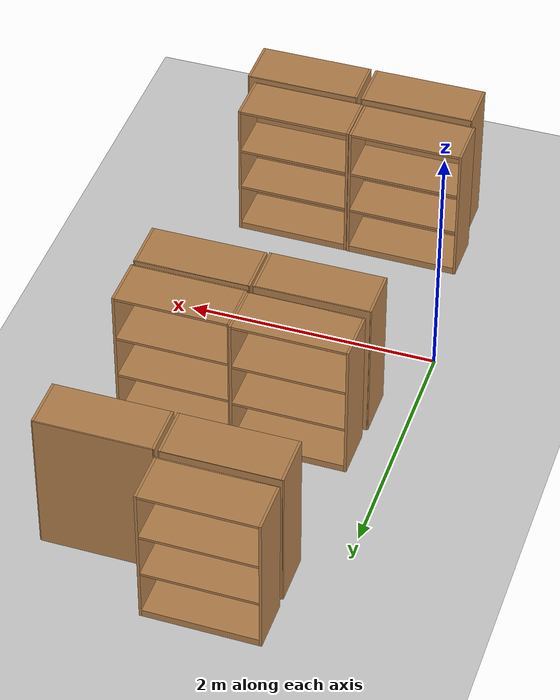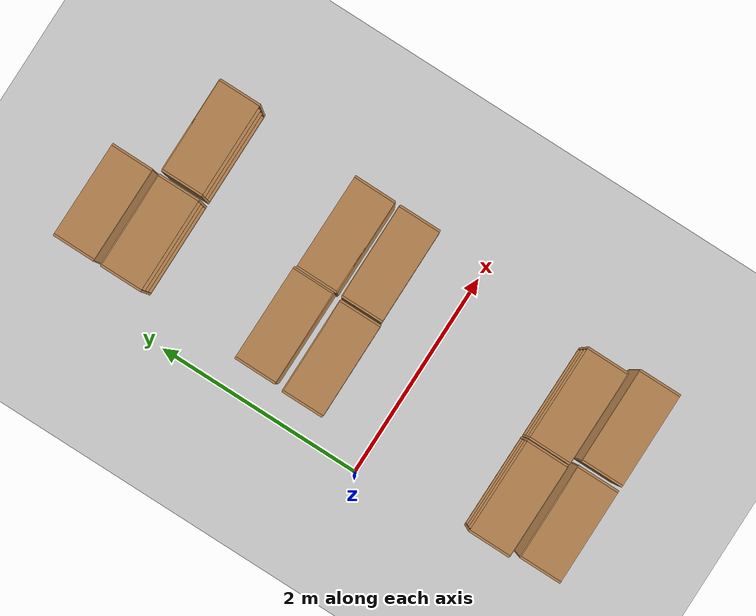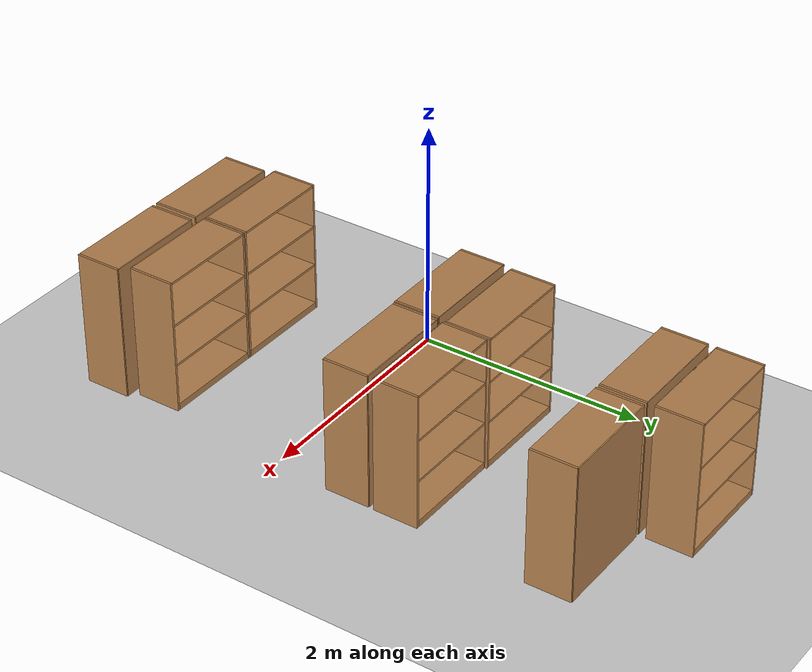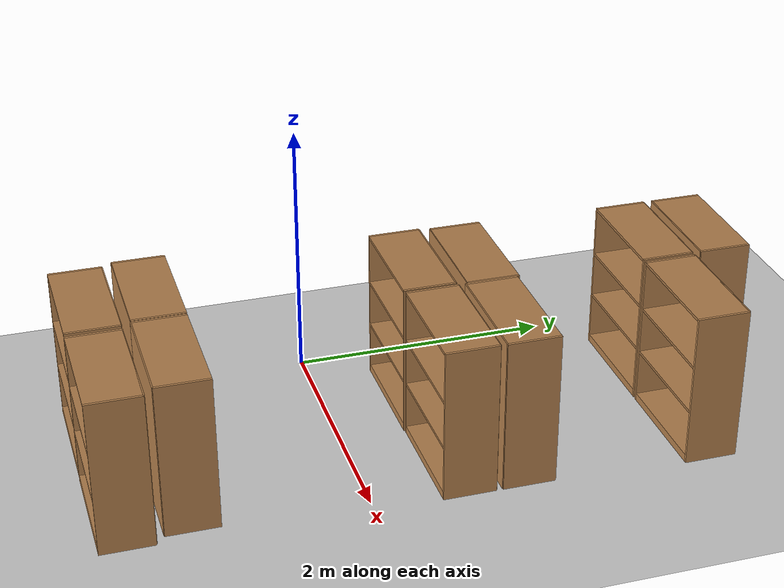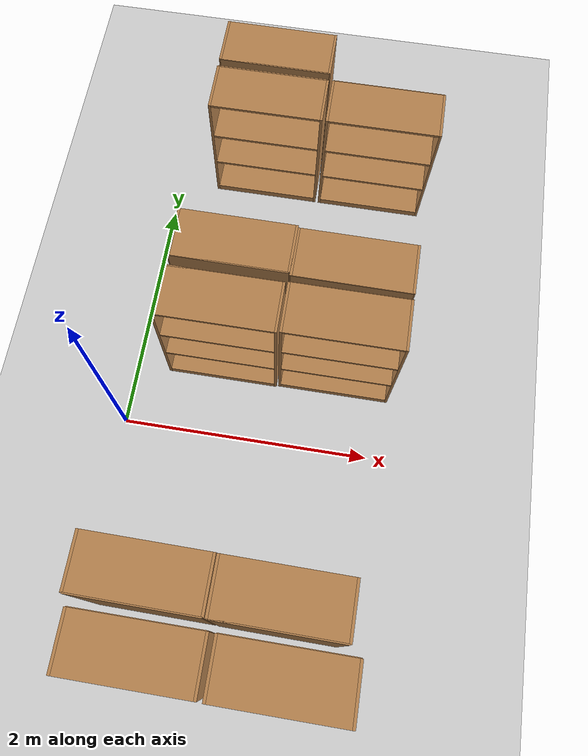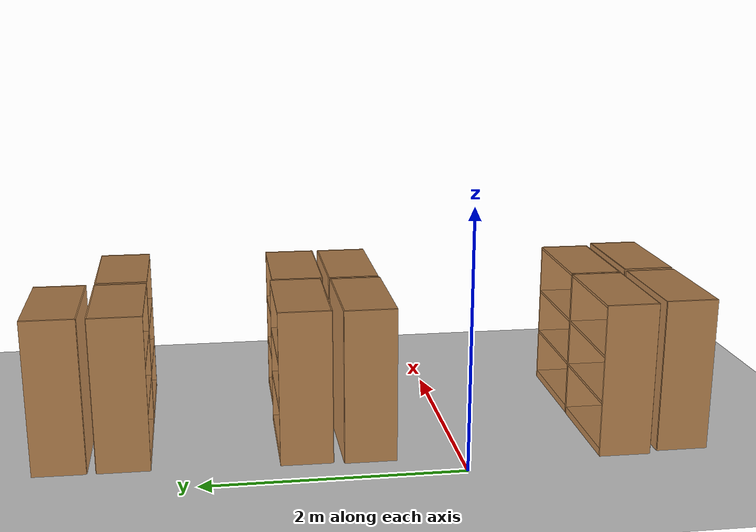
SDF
<sdf version="1.7">
 <world name="default">
  <model name="ground_plane">
   <static>1</static>
   <link name="link">
    <collision name="collision">
     <geometry><plane><normal>0 0 1</normal><size>100 100</size></plane></geometry>
     <surface>
      <contact><collide_bitmask>65535</collide_bitmask></contact>
      <friction><ode><mu>100</mu><mu2>50</mu2></ode></friction>
     </surface>
    </collision>
    <visual name="visual">
     <cast_shadows>0</cast_shadows>
     <geometry><plane><normal>0 0 1</normal><size>100 100</size></plane></geometry>
     <material>
      <script><uri>file://media/materials/scripts/gazebo.material</uri><name>Gazebo/Grey</name></script>
     </material>
    </visual>
   </link>
  </model>
  <model name="bookshelf_0">
   <static>1</static>
   <link name="link">
    <inertial><mass>1</mass></inertial>
    <collision name="back">
     <pose>0 0.005 0.6 0 -0 0</pose>
     <geometry><box><size>0.9 0.01 1.2</size></box></geometry>
    </collision>
    <visual name="visual1">
     <pose>0 0.005 0.6 0 -0 0</pose>
     <geometry><box><size>0.9 0.01 1.2</size></box></geometry>
     <material>
      <script><uri>file://media/materials/scripts/gazebo.material</uri><name>Gazebo/Wood</name></script>
     </material>
    </visual>
    <collision name="left_side">
     <pose>0.45 -0.195 0.6 0 -0 0</pose>
     <geometry><box><size>0.02 0.4 1.2</size></box></geometry>
    </collision>
    <visual name="visual2">
     <pose>0.45 -0.195 0.6 0 -0 0</pose>
     <geometry><box><size>0.02 0.4 1.2</size></box></geometry>
     <material>
      <script><uri>file://media/materials/scripts/gazebo.material</uri><name>Gazebo/Wood</name></script>
     </material>
    </visual>
    <collision name="right_side">
     <pose>-0.45 -0.195 0.6 0 -0 0</pose>
     <geometry><box><size>0.02 0.4 1.2</size></box></geometry>
    </collision>
    <visual name="visual3">
     <pose>-0.45 -0.195 0.6 0 -0 0</pose>
     <geometry><box><size>0.02 0.4 1.2</size></box></geometry>
     <material>
      <script><uri>file://media/materials/scripts/gazebo.material</uri><name>Gazebo/Wood</name></script>
     </material>
    </visual>
    <collision name="bottom">
     <pose>0 -0.195 0.03 0 -0 0</pose>
     <geometry><box><size>0.88 0.4 0.06</size></box></geometry>
    </collision>
    <visual name="visual4">
     <pose>0 -0.195 0.03 0 -0 0</pose>
     <geometry><box><size>0.88 0.4 0.06</size></box></geometry>
     <material>
      <script><uri>file://media/materials/scripts/gazebo.material</uri><name>Gazebo/Wood</name></script>
     </material>
    </visual>
    <collision name="top">
     <pose>0 -0.195 1.19 0 -0 0</pose>
     <geometry><box><size>0.88 0.4 0.02</size></box></geometry>
    </collision>
    <visual name="visual5">
     <pose>0 -0.195 1.19 0 -0 0</pose>
     <geometry><box><size>0.88 0.4 0.02</size></box></geometry>
     <material>
      <script><uri>file://media/materials/scripts/gazebo.material</uri><name>Gazebo/Wood</name></script>
     </material>
    </visual>
    <collision name="low_shelf">
     <pose>0 -0.195 0.43 0 -0 0</pose>
     <geometry><box><size>0.88 0.4 0.02</size></box></geometry>
    </collision>
    <visual name="visual6">
     <pose>0 -0.195 0.43 0 -0 0</pose>
     <geometry><box><size>0.88 0.4 0.02</size></box></geometry>
     <material>
      <script><uri>file://media/materials/scripts/gazebo.material</uri><name>Gazebo/Wood</name></script>
     </material>
    </visual>
    <collision name="high_shelf">
     <pose>0 -0.195 0.8 0 -0 0</pose>
     <geometry><box><size>0.88 0.4 0.02</size></box></geometry>
    </collision>
    <visual name="visual7">
     <pose>0 -0.195 0.8 0 -0 0</pose>
     <geometry><box><size>0.88 0.4 0.02</size></box></geometry>
     <material>
      <script><uri>file://media/materials/scripts/gazebo.material</uri><name>Gazebo/Wood</name></script>
     </material>
    </visual>
   </link>
   <pose>1.7387 2.73379 0 0 -0 0</pose>
  </model>
  <model name="bookshelf_1">
   <static>1</static>
   <link name="link">
    <inertial><mass>1</mass></inertial>
    <collision name="back">
     <pose>0 0.005 0.6 0 -0 0</pose>
     <geometry><box><size>0.9 0.01 1.2</size></box></geometry>
    </collision>
    <visual name="visual1">
     <pose>0 0.005 0.6 0 -0 0</pose>
     <geometry><box><size>0.9 0.01 1.2</size></box></geometry>
     <material>
      <script><uri>file://media/materials/scripts/gazebo.material</uri><name>Gazebo/Wood</name></script>
     </material>
    </visual>
    <collision name="left_side">
     <pose>0.45 -0.195 0.6 0 -0 0</pose>
     <geometry><box><size>0.02 0.4 1.2</size></box></geometry>
    </collision>
    <visual name="visual2">
     <pose>0.45 -0.195 0.6 0 -0 0</pose>
     <geometry><box><size>0.02 0.4 1.2</size></box></geometry>
     <material>
      <script><uri>file://media/materials/scripts/gazebo.material</uri><name>Gazebo/Wood</name></script>
     </material>
    </visual>
    <collision name="right_side">
     <pose>-0.45 -0.195 0.6 0 -0 0</pose>
     <geometry><box><size>0.02 0.4 1.2</size></box></geometry>
    </collision>
    <visual name="visual3">
     <pose>-0.45 -0.195 0.6 0 -0 0</pose>
     <geometry><box><size>0.02 0.4 1.2</size></box></geometry>
     <material>
      <script><uri>file://media/materials/scripts/gazebo.material</uri><name>Gazebo/Wood</name></script>
     </material>
    </visual>
    <collision name="bottom">
     <pose>0 -0.195 0.03 0 -0 0</pose>
     <geometry><box><size>0.88 0.4 0.06</size></box></geometry>
    </collision>
    <visual name="visual4">
     <pose>0 -0.195 0.03 0 -0 0</pose>
     <geometry><box><size>0.88 0.4 0.06</size></box></geometry>
     <material>
      <script><uri>file://media/materials/scripts/gazebo.material</uri><name>Gazebo/Wood</name></script>
     </material>
    </visual>
    <collision name="top">
     <pose>0 -0.195 1.19 0 -0 0</pose>
     <geometry><box><size>0.88 0.4 0.02</size></box></geometry>
    </collision>
    <visual name="visual5">
     <pose>0 -0.195 1.19 0 -0 0</pose>
     <geometry><box><size>0.88 0.4 0.02</size></box></geometry>
     <material>
      <script><uri>file://media/materials/scripts/gazebo.material</uri><name>Gazebo/Wood</name></script>
     </material>
    </visual>
    <collision name="low_shelf">
     <pose>0 -0.195 0.43 0 -0 0</pose>
     <geometry><box><size>0.88 0.4 0.02</size></box></geometry>
    </collision>
    <visual name="visual6">
     <pose>0 -0.195 0.43 0 -0 0</pose>
     <geometry><box><size>0.88 0.4 0.02</size></box></geometry>
     <material>
      <script><uri>file://media/materials/scripts/gazebo.material</uri><name>Gazebo/Wood</name></script>
     </material>
    </visual>
    <collision name="high_shelf">
     <pose>0 -0.195 0.8 0 -0 0</pose>
     <geometry><box><size>0.88 0.4 0.02</size></box></geometry>
    </collision>
    <visual name="visual7">
     <pose>0 -0.195 0.8 0 -0 0</pose>
     <geometry><box><size>0.88 0.4 0.02</size></box></geometry>
     <material>
      <script><uri>file://media/materials/scripts/gazebo.material</uri><name>Gazebo/Wood</name></script>
     </material>
    </visual>
   </link>
   <pose>0.793169 2.73431 0 0 -0 0</pose>
  </model>
  <model name="bookshelf_2_clone">
   <static>1</static>
   <link name="link">
    <inertial><mass>1</mass></inertial>
    <collision name="back">
     <pose>0 0.005 0.6 0 -0 0</pose>
     <geometry><box><size>0.9 0.01 1.2</size></box></geometry>
    </collision>
    <visual name="visual1">
     <pose>0 0.005 0.6 0 -0 0</pose>
     <geometry><box><size>0.9 0.01 1.2</size></box></geometry>
     <material>
      <script><uri>file://media/materials/scripts/gazebo.material</uri><name>Gazebo/Wood</name></script>
     </material>
    </visual>
    <collision name="left_side">
     <pose>0.45 -0.195 0.6 0 -0 0</pose>
     <geometry><box><size>0.02 0.4 1.2</size></box></geometry>
    </collision>
    <visual name="visual2">
     <pose>0.45 -0.195 0.6 0 -0 0</pose>
     <geometry><box><size>0.02 0.4 1.2</size></box></geometry>
     <material>
      <script><uri>file://media/materials/scripts/gazebo.material</uri><name>Gazebo/Wood</name></script>
     </material>
    </visual>
    <collision name="right_side">
     <pose>-0.45 -0.195 0.6 0 -0 0</pose>
     <geometry><box><size>0.02 0.4 1.2</size></box></geometry>
    </collision>
    <visual name="visual3">
     <pose>-0.45 -0.195 0.6 0 -0 0</pose>
     <geometry><box><size>0.02 0.4 1.2</size></box></geometry>
     <material>
      <script><uri>file://media/materials/scripts/gazebo.material</uri><name>Gazebo/Wood</name></script>
     </material>
    </visual>
    <collision name="bottom">
     <pose>0 -0.195 0.03 0 -0 0</pose>
     <geometry><box><size>0.88 0.4 0.06</size></box></geometry>
    </collision>
    <visual name="visual4">
     <pose>0 -0.195 0.03 0 -0 0</pose>
     <geometry><box><size>0.88 0.4 0.06</size></box></geometry>
     <material>
      <script><uri>file://media/materials/scripts/gazebo.material</uri><name>Gazebo/Wood</name></script>
     </material>
    </visual>
    <collision name="top">
     <pose>0 -0.195 1.19 0 -0 0</pose>
     <geometry><box><size>0.88 0.4 0.02</size></box></geometry>
    </collision>
    <visual name="visual5">
     <pose>0 -0.195 1.19 0 -0 0</pose>
     <geometry><box><size>0.88 0.4 0.02</size></box></geometry>
     <material>
      <script><uri>file://media/materials/scripts/gazebo.material</uri><name>Gazebo/Wood</name></script>
     </material>
    </visual>
    <collision name="low_shelf">
     <pose>0 -0.195 0.43 0 -0 0</pose>
     <geometry><box><size>0.88 0.4 0.02</size></box></geometry>
    </collision>
    <visual name="visual6">
     <pose>0 -0.195 0.43 0 -0 0</pose>
     <geometry><box><size>0.88 0.4 0.02</size></box></geometry>
     <material>
      <script><uri>file://media/materials/scripts/gazebo.material</uri><name>Gazebo/Wood</name></script>
     </material>
    </visual>
    <collision name="high_shelf">
     <pose>0 -0.195 0.8 0 -0 0</pose>
     <geometry><box><size>0.88 0.4 0.02</size></box></geometry>
    </collision>
    <visual name="visual7">
     <pose>0 -0.195 0.8 0 -0 0</pose>
     <geometry><box><size>0.88 0.4 0.02</size></box></geometry>
     <material>
      <script><uri>file://media/materials/scripts/gazebo.material</uri><name>Gazebo/Wood</name></script>
     </material>
    </visual>
   </link>
   <pose>1.6637 0.95756 0 0 -0 3.13622</pose>
  </model>
  <model name="bookshelf_2_clone_0">
   <static>1</static>
   <link name="link">
    <inertial><mass>1</mass></inertial>
    <collision name="back">
     <pose>0 0.005 0.6 0 -0 0</pose>
     <geometry><box><size>0.9 0.01 1.2</size></box></geometry>
    </collision>
    <visual name="visual1">
     <pose>0 0.005 0.6 0 -0 0</pose>
     <geometry><box><size>0.9 0.01 1.2</size></box></geometry>
     <material>
      <script><uri>file://media/materials/scripts/gazebo.material</uri><name>Gazebo/Wood</name></script>
     </material>
    </visual>
    <collision name="left_side">
     <pose>0.45 -0.195 0.6 0 -0 0</pose>
     <geometry><box><size>0.02 0.4 1.2</size></box></geometry>
    </collision>
    <visual name="visual2">
     <pose>0.45 -0.195 0.6 0 -0 0</pose>
     <geometry><box><size>0.02 0.4 1.2</size></box></geometry>
     <material>
      <script><uri>file://media/materials/scripts/gazebo.material</uri><name>Gazebo/Wood</name></script>
     </material>
    </visual>
    <collision name="right_side">
     <pose>-0.45 -0.195 0.6 0 -0 0</pose>
     <geometry><box><size>0.02 0.4 1.2</size></box></geometry>
    </collision>
    <visual name="visual3">
     <pose>-0.45 -0.195 0.6 0 -0 0</pose>
     <geometry><box><size>0.02 0.4 1.2</size></box></geometry>
     <material>
      <script><uri>file://media/materials/scripts/gazebo.material</uri><name>Gazebo/Wood</name></script>
     </material>
    </visual>
    <collision name="bottom">
     <pose>0 -0.195 0.03 0 -0 0</pose>
     <geometry><box><size>0.88 0.4 0.06</size></box></geometry>
    </collision>
    <visual name="visual4">
     <pose>0 -0.195 0.03 0 -0 0</pose>
     <geometry><box><size>0.88 0.4 0.06</size></box></geometry>
     <material>
      <script><uri>file://media/materials/scripts/gazebo.material</uri><name>Gazebo/Wood</name></script>
     </material>
    </visual>
    <collision name="top">
     <pose>0 -0.195 1.19 0 -0 0</pose>
     <geometry><box><size>0.88 0.4 0.02</size></box></geometry>
    </collision>
    <visual name="visual5">
     <pose>0 -0.195 1.19 0 -0 0</pose>
     <geometry><box><size>0.88 0.4 0.02</size></box></geometry>
     <material>
      <script><uri>file://media/materials/scripts/gazebo.material</uri><name>Gazebo/Wood</name></script>
     </material>
    </visual>
    <collision name="low_shelf">
     <pose>0 -0.195 0.43 0 -0 0</pose>
     <geometry><box><size>0.88 0.4 0.02</size></box></geometry>
    </collision>
    <visual name="visual6">
     <pose>0 -0.195 0.43 0 -0 0</pose>
     <geometry><box><size>0.88 0.4 0.02</size></box></geometry>
     <material>
      <script><uri>file://media/materials/scripts/gazebo.material</uri><name>Gazebo/Wood</name></script>
     </material>
    </visual>
    <collision name="high_shelf">
     <pose>0 -0.195 0.8 0 -0 0</pose>
     <geometry><box><size>0.88 0.4 0.02</size></box></geometry>
    </collision>
    <visual name="visual7">
     <pose>0 -0.195 0.8 0 -0 0</pose>
     <geometry><box><size>0.88 0.4 0.02</size></box></geometry>
     <material>
      <script><uri>file://media/materials/scripts/gazebo.material</uri><name>Gazebo/Wood</name></script>
     </material>
    </visual>
   </link>
   <pose>0.747513 0.98044 0 0 -0 3.13622</pose>
  </model>
  <model name="bookshelf_clone_clone">
   <static>1</static>
   <link name="link">
    <inertial><mass>1</mass></inertial>
    <collision name="back">
     <pose>0 0.005 0.6 0 -0 0</pose>
     <geometry><box><size>0.9 0.01 1.2</size></box></geometry>
    </collision>
    <visual name="visual1">
     <pose>0 0.005 0.6 0 -0 0</pose>
     <geometry><box><size>0.9 0.01 1.2</size></box></geometry>
     <material>
      <script><uri>file://media/materials/scripts/gazebo.material</uri><name>Gazebo/Wood</name></script>
     </material>
    </visual>
    <collision name="left_side">
     <pose>0.45 -0.195 0.6 0 -0 0</pose>
     <geometry><box><size>0.02 0.4 1.2</size></box></geometry>
    </collision>
    <visual name="visual2">
     <pose>0.45 -0.195 0.6 0 -0 0</pose>
     <geometry><box><size>0.02 0.4 1.2</size></box></geometry>
     <material>
      <script><uri>file://media/materials/scripts/gazebo.material</uri><name>Gazebo/Wood</name></script>
     </material>
    </visual>
    <collision name="right_side">
     <pose>-0.45 -0.195 0.6 0 -0 0</pose>
     <geometry><box><size>0.02 0.4 1.2</size></box></geometry>
    </collision>
    <visual name="visual3">
     <pose>-0.45 -0.195 0.6 0 -0 0</pose>
     <geometry><box><size>0.02 0.4 1.2</size></box></geometry>
     <material>
      <script><uri>file://media/materials/scripts/gazebo.material</uri><name>Gazebo/Wood</name></script>
     </material>
    </visual>
    <collision name="bottom">
     <pose>0 -0.195 0.03 0 -0 0</pose>
     <geometry><box><size>0.88 0.4 0.06</size></box></geometry>
    </collision>
    <visual name="visual4">
     <pose>0 -0.195 0.03 0 -0 0</pose>
     <geometry><box><size>0.88 0.4 0.06</size></box></geometry>
     <material>
      <script><uri>file://media/materials/scripts/gazebo.material</uri><name>Gazebo/Wood</name></script>
     </material>
    </visual>
    <collision name="top">
     <pose>0 -0.195 1.19 0 -0 0</pose>
     <geometry><box><size>0.88 0.4 0.02</size></box></geometry>
    </collision>
    <visual name="visual5">
     <pose>0 -0.195 1.19 0 -0 0</pose>
     <geometry><box><size>0.88 0.4 0.02</size></box></geometry>
     <material>
      <script><uri>file://media/materials/scripts/gazebo.material</uri><name>Gazebo/Wood</name></script>
     </material>
    </visual>
    <collision name="low_shelf">
     <pose>0 -0.195 0.43 0 -0 0</pose>
     <geometry><box><size>0.88 0.4 0.02</size></box></geometry>
    </collision>
    <visual name="visual6">
     <pose>0 -0.195 0.43 0 -0 0</pose>
     <geometry><box><size>0.88 0.4 0.02</size></box></geometry>
     <material>
      <script><uri>file://media/materials/scripts/gazebo.material</uri><name>Gazebo/Wood</name></script>
     </material>
    </visual>
    <collision name="high_shelf">
     <pose>0 -0.195 0.8 0 -0 0</pose>
     <geometry><box><size>0.88 0.4 0.02</size></box></geometry>
    </collision>
    <visual name="visual7">
     <pose>0 -0.195 0.8 0 -0 0</pose>
     <geometry><box><size>0.88 0.4 0.02</size></box></geometry>
     <material>
      <script><uri>file://media/materials/scripts/gazebo.material</uri><name>Gazebo/Wood</name></script>
     </material>
    </visual>
   </link>
   <pose>1.6608 0.896396 0 0 -0 0</pose>
  </model>
  <model name="bookshelf_clone_clone_clone">
   <static>1</static>
   <link name="link">
    <inertial><mass>1</mass></inertial>
    <collision name="back">
     <pose>0 0.005 0.6 0 -0 0</pose>
     <geometry><box><size>0.9 0.01 1.2</size></box></geometry>
    </collision>
    <visual name="visual1">
     <pose>0 0.005 0.6 0 -0 0</pose>
     <geometry><box><size>0.9 0.01 1.2</size></box></geometry>
     <material>
      <script><uri>file://media/materials/scripts/gazebo.material</uri><name>Gazebo/Wood</name></script>
     </material>
    </visual>
    <collision name="left_side">
     <pose>0.45 -0.195 0.6 0 -0 0</pose>
     <geometry><box><size>0.02 0.4 1.2</size></box></geometry>
    </collision>
    <visual name="visual2">
     <pose>0.45 -0.195 0.6 0 -0 0</pose>
     <geometry><box><size>0.02 0.4 1.2</size></box></geometry>
     <material>
      <script><uri>file://media/materials/scripts/gazebo.material</uri><name>Gazebo/Wood</name></script>
     </material>
    </visual>
    <collision name="right_side">
     <pose>-0.45 -0.195 0.6 0 -0 0</pose>
     <geometry><box><size>0.02 0.4 1.2</size></box></geometry>
    </collision>
    <visual name="visual3">
     <pose>-0.45 -0.195 0.6 0 -0 0</pose>
     <geometry><box><size>0.02 0.4 1.2</size></box></geometry>
     <material>
      <script><uri>file://media/materials/scripts/gazebo.material</uri><name>Gazebo/Wood</name></script>
     </material>
    </visual>
    <collision name="bottom">
     <pose>0 -0.195 0.03 0 -0 0</pose>
     <geometry><box><size>0.88 0.4 0.06</size></box></geometry>
    </collision>
    <visual name="visual4">
     <pose>0 -0.195 0.03 0 -0 0</pose>
     <geometry><box><size>0.88 0.4 0.06</size></box></geometry>
     <material>
      <script><uri>file://media/materials/scripts/gazebo.material</uri><name>Gazebo/Wood</name></script>
     </material>
    </visual>
    <collision name="top">
     <pose>0 -0.195 1.19 0 -0 0</pose>
     <geometry><box><size>0.88 0.4 0.02</size></box></geometry>
    </collision>
    <visual name="visual5">
     <pose>0 -0.195 1.19 0 -0 0</pose>
     <geometry><box><size>0.88 0.4 0.02</size></box></geometry>
     <material>
      <script><uri>file://media/materials/scripts/gazebo.material</uri><name>Gazebo/Wood</name></script>
     </material>
    </visual>
    <collision name="low_shelf">
     <pose>0 -0.195 0.43 0 -0 0</pose>
     <geometry><box><size>0.88 0.4 0.02</size></box></geometry>
    </collision>
    <visual name="visual6">
     <pose>0 -0.195 0.43 0 -0 0</pose>
     <geometry><box><size>0.88 0.4 0.02</size></box></geometry>
     <material>
      <script><uri>file://media/materials/scripts/gazebo.material</uri><name>Gazebo/Wood</name></script>
     </material>
    </visual>
    <collision name="high_shelf">
     <pose>0 -0.195 0.8 0 -0 0</pose>
     <geometry><box><size>0.88 0.4 0.02</size></box></geometry>
    </collision>
    <visual name="visual7">
     <pose>0 -0.195 0.8 0 -0 0</pose>
     <geometry><box><size>0.88 0.4 0.02</size></box></geometry>
     <material>
      <script><uri>file://media/materials/scripts/gazebo.material</uri><name>Gazebo/Wood</name></script>
     </material>
    </visual>
   </link>
   <pose>0.72663 0.888413 0 0 -0 0</pose>
  </model>
  <model name="bookshelf_2_clone_0_clone_1">
   <static>1</static>
   <link name="link">
    <inertial><mass>1</mass></inertial>
    <collision name="back">
     <pose>0 0.005 0.6 0 -0 0</pose>
     <geometry><box><size>0.9 0.01 1.2</size></box></geometry>
    </collision>
    <visual name="visual1">
     <pose>0 0.005 0.6 0 -0 0</pose>
     <geometry><box><size>0.9 0.01 1.2</size></box></geometry>
     <material>
      <script><uri>file://media/materials/scripts/gazebo.material</uri><name>Gazebo/Wood</name></script>
     </material>
    </visual>
    <collision name="left_side">
     <pose>0.45 -0.195 0.6 0 -0 0</pose>
     <geometry><box><size>0.02 0.4 1.2</size></box></geometry>
    </collision>
    <visual name="visual2">
     <pose>0.45 -0.195 0.6 0 -0 0</pose>
     <geometry><box><size>0.02 0.4 1.2</size></box></geometry>
     <material>
      <script><uri>file://media/materials/scripts/gazebo.material</uri><name>Gazebo/Wood</name></script>
     </material>
    </visual>
    <collision name="right_side">
     <pose>-0.45 -0.195 0.6 0 -0 0</pose>
     <geometry><box><size>0.02 0.4 1.2</size></box></geometry>
    </collision>
    <visual name="visual3">
     <pose>-0.45 -0.195 0.6 0 -0 0</pose>
     <geometry><box><size>0.02 0.4 1.2</size></box></geometry>
     <material>
      <script><uri>file://media/materials/scripts/gazebo.material</uri><name>Gazebo/Wood</name></script>
     </material>
    </visual>
    <collision name="bottom">
     <pose>0 -0.195 0.03 0 -0 0</pose>
     <geometry><box><size>0.88 0.4 0.06</size></box></geometry>
    </collision>
    <visual name="visual4">
     <pose>0 -0.195 0.03 0 -0 0</pose>
     <geometry><box><size>0.88 0.4 0.06</size></box></geometry>
     <material>
      <script><uri>file://media/materials/scripts/gazebo.material</uri><name>Gazebo/Wood</name></script>
     </material>
    </visual>
    <collision name="top">
     <pose>0 -0.195 1.19 0 -0 0</pose>
     <geometry><box><size>0.88 0.4 0.02</size></box></geometry>
    </collision>
    <visual name="visual5">
     <pose>0 -0.195 1.19 0 -0 0</pose>
     <geometry><box><size>0.88 0.4 0.02</size></box></geometry>
     <material>
      <script><uri>file://media/materials/scripts/gazebo.material</uri><name>Gazebo/Wood</name></script>
     </material>
    </visual>
    <collision name="low_shelf">
     <pose>0 -0.195 0.43 0 -0 0</pose>
     <geometry><box><size>0.88 0.4 0.02</size></box></geometry>
    </collision>
    <visual name="visual6">
     <pose>0 -0.195 0.43 0 -0 0</pose>
     <geometry><box><size>0.88 0.4 0.02</size></box></geometry>
     <material>
      <script><uri>file://media/materials/scripts/gazebo.material</uri><name>Gazebo/Wood</name></script>
     </material>
    </visual>
    <collision name="high_shelf">
     <pose>0 -0.195 0.8 0 -0 0</pose>
     <geometry><box><size>0.88 0.4 0.02</size></box></geometry>
    </collision>
    <visual name="visual7">
     <pose>0 -0.195 0.8 0 -0 0</pose>
     <geometry><box><size>0.88 0.4 0.02</size></box></geometry>
     <material>
      <script><uri>file://media/materials/scripts/gazebo.material</uri><name>Gazebo/Wood</name></script>
     </material>
    </visual>
   </link>
   <pose>0.795432 2.81359 0 0 -0 3.13622</pose>
  </model>
  <model name="bookshelf_2_clone_2">
   <static>1</static>
   <link name="link">
    <inertial><mass>1</mass></inertial>
    <collision name="back">
     <pose>0 0.005 0.6 0 -0 0</pose>
     <geometry><box><size>0.9 0.01 1.2</size></box></geometry>
    </collision>
    <visual name="visual1">
     <pose>0 0.005 0.6 0 -0 0</pose>
     <geometry><box><size>0.9 0.01 1.2</size></box></geometry>
     <material>
      <script><uri>file://media/materials/scripts/gazebo.material</uri><name>Gazebo/Wood</name></script>
     </material>
    </visual>
    <collision name="left_side">
     <pose>0.45 -0.195 0.6 0 -0 0</pose>
     <geometry><box><size>0.02 0.4 1.2</size></box></geometry>
    </collision>
    <visual name="visual2">
     <pose>0.45 -0.195 0.6 0 -0 0</pose>
     <geometry><box><size>0.02 0.4 1.2</size></box></geometry>
     <material>
      <script><uri>file://media/materials/scripts/gazebo.material</uri><name>Gazebo/Wood</name></script>
     </material>
    </visual>
    <collision name="right_side">
     <pose>-0.45 -0.195 0.6 0 -0 0</pose>
     <geometry><box><size>0.02 0.4 1.2</size></box></geometry>
    </collision>
    <visual name="visual3">
     <pose>-0.45 -0.195 0.6 0 -0 0</pose>
     <geometry><box><size>0.02 0.4 1.2</size></box></geometry>
     <material>
      <script><uri>file://media/materials/scripts/gazebo.material</uri><name>Gazebo/Wood</name></script>
     </material>
    </visual>
    <collision name="bottom">
     <pose>0 -0.195 0.03 0 -0 0</pose>
     <geometry><box><size>0.88 0.4 0.06</size></box></geometry>
    </collision>
    <visual name="visual4">
     <pose>0 -0.195 0.03 0 -0 0</pose>
     <geometry><box><size>0.88 0.4 0.06</size></box></geometry>
     <material>
      <script><uri>file://media/materials/scripts/gazebo.material</uri><name>Gazebo/Wood</name></script>
     </material>
    </visual>
    <collision name="top">
     <pose>0 -0.195 1.19 0 -0 0</pose>
     <geometry><box><size>0.88 0.4 0.02</size></box></geometry>
    </collision>
    <visual name="visual5">
     <pose>0 -0.195 1.19 0 -0 0</pose>
     <geometry><box><size>0.88 0.4 0.02</size></box></geometry>
     <material>
      <script><uri>file://media/materials/scripts/gazebo.material</uri><name>Gazebo/Wood</name></script>
     </material>
    </visual>
    <collision name="low_shelf">
     <pose>0 -0.195 0.43 0 -0 0</pose>
     <geometry><box><size>0.88 0.4 0.02</size></box></geometry>
    </collision>
    <visual name="visual6">
     <pose>0 -0.195 0.43 0 -0 0</pose>
     <geometry><box><size>0.88 0.4 0.02</size></box></geometry>
     <material>
      <script><uri>file://media/materials/scripts/gazebo.material</uri><name>Gazebo/Wood</name></script>
     </material>
    </visual>
    <collision name="high_shelf">
     <pose>0 -0.195 0.8 0 -0 0</pose>
     <geometry><box><size>0.88 0.4 0.02</size></box></geometry>
    </collision>
    <visual name="visual7">
     <pose>0 -0.195 0.8 0 -0 0</pose>
     <geometry><box><size>0.88 0.4 0.02</size></box></geometry>
     <material>
      <script><uri>file://media/materials/scripts/gazebo.material</uri><name>Gazebo/Wood</name></script>
     </material>
    </visual>
   </link>
   <pose>1.50781 -1.45641 0 0 -0 3.13622</pose>
  </model>
  <model name="bookshelf_2_clone_3">
   <static>1</static>
   <link name="link">
    <inertial><mass>1</mass></inertial>
    <collision name="back">
     <pose>0 0.005 0.6 0 -0 0</pose>
     <geometry><box><size>0.9 0.01 1.2</size></box></geometry>
    </collision>
    <visual name="visual1">
     <pose>0 0.005 0.6 0 -0 0</pose>
     <geometry><box><size>0.9 0.01 1.2</size></box></geometry>
     <material>
      <script><uri>file://media/materials/scripts/gazebo.material</uri><name>Gazebo/Wood</name></script>
     </material>
    </visual>
    <collision name="left_side">
     <pose>0.45 -0.195 0.6 0 -0 0</pose>
     <geometry><box><size>0.02 0.4 1.2</size></box></geometry>
    </collision>
    <visual name="visual2">
     <pose>0.45 -0.195 0.6 0 -0 0</pose>
     <geometry><box><size>0.02 0.4 1.2</size></box></geometry>
     <material>
      <script><uri>file://media/materials/scripts/gazebo.material</uri><name>Gazebo/Wood</name></script>
     </material>
    </visual>
    <collision name="right_side">
     <pose>-0.45 -0.195 0.6 0 -0 0</pose>
     <geometry><box><size>0.02 0.4 1.2</size></box></geometry>
    </collision>
    <visual name="visual3">
     <pose>-0.45 -0.195 0.6 0 -0 0</pose>
     <geometry><box><size>0.02 0.4 1.2</size></box></geometry>
     <material>
      <script><uri>file://media/materials/scripts/gazebo.material</uri><name>Gazebo/Wood</name></script>
     </material>
    </visual>
    <collision name="bottom">
     <pose>0 -0.195 0.03 0 -0 0</pose>
     <geometry><box><size>0.88 0.4 0.06</size></box></geometry>
    </collision>
    <visual name="visual4">
     <pose>0 -0.195 0.03 0 -0 0</pose>
     <geometry><box><size>0.88 0.4 0.06</size></box></geometry>
     <material>
      <script><uri>file://media/materials/scripts/gazebo.material</uri><name>Gazebo/Wood</name></script>
     </material>
    </visual>
    <collision name="top">
     <pose>0 -0.195 1.19 0 -0 0</pose>
     <geometry><box><size>0.88 0.4 0.02</size></box></geometry>
    </collision>
    <visual name="visual5">
     <pose>0 -0.195 1.19 0 -0 0</pose>
     <geometry><box><size>0.88 0.4 0.02</size></box></geometry>
     <material>
      <script><uri>file://media/materials/scripts/gazebo.material</uri><name>Gazebo/Wood</name></script>
     </material>
    </visual>
    <collision name="low_shelf">
     <pose>0 -0.195 0.43 0 -0 0</pose>
     <geometry><box><size>0.88 0.4 0.02</size></box></geometry>
    </collision>
    <visual name="visual6">
     <pose>0 -0.195 0.43 0 -0 0</pose>
     <geometry><box><size>0.88 0.4 0.02</size></box></geometry>
     <material>
      <script><uri>file://media/materials/scripts/gazebo.material</uri><name>Gazebo/Wood</name></script>
     </material>
    </visual>
    <collision name="high_shelf">
     <pose>0 -0.195 0.8 0 -0 0</pose>
     <geometry><box><size>0.88 0.4 0.02</size></box></geometry>
    </collision>
    <visual name="visual7">
     <pose>0 -0.195 0.8 0 -0 0</pose>
     <geometry><box><size>0.88 0.4 0.02</size></box></geometry>
     <material>
      <script><uri>file://media/materials/scripts/gazebo.material</uri><name>Gazebo/Wood</name></script>
     </material>
    </visual>
   </link>
   <pose>0.583819 -1.44906 0 0 -0 3.13622</pose>
  </model>
  <model name="bookshelf_clone_clone_clone_0">
   <static>1</static>
   <link name="link">
    <inertial><mass>1</mass></inertial>
    <collision name="back">
     <pose>0 0.005 0.6 0 -0 0</pose>
     <geometry><box><size>0.9 0.01 1.2</size></box></geometry>
    </collision>
    <visual name="visual1">
     <pose>0 0.005 0.6 0 -0 0</pose>
     <geometry><box><size>0.9 0.01 1.2</size></box></geometry>
     <material>
      <script><uri>file://media/materials/scripts/gazebo.material</uri><name>Gazebo/Wood</name></script>
     </material>
    </visual>
    <collision name="left_side">
     <pose>0.45 -0.195 0.6 0 -0 0</pose>
     <geometry><box><size>0.02 0.4 1.2</size></box></geometry>
    </collision>
    <visual name="visual2">
     <pose>0.45 -0.195 0.6 0 -0 0</pose>
     <geometry><box><size>0.02 0.4 1.2</size></box></geometry>
     <material>
      <script><uri>file://media/materials/scripts/gazebo.material</uri><name>Gazebo/Wood</name></script>
     </material>
    </visual>
    <collision name="right_side">
     <pose>-0.45 -0.195 0.6 0 -0 0</pose>
     <geometry><box><size>0.02 0.4 1.2</size></box></geometry>
    </collision>
    <visual name="visual3">
     <pose>-0.45 -0.195 0.6 0 -0 0</pose>
     <geometry><box><size>0.02 0.4 1.2</size></box></geometry>
     <material>
      <script><uri>file://media/materials/scripts/gazebo.material</uri><name>Gazebo/Wood</name></script>
     </material>
    </visual>
    <collision name="bottom">
     <pose>0 -0.195 0.03 0 -0 0</pose>
     <geometry><box><size>0.88 0.4 0.06</size></box></geometry>
    </collision>
    <visual name="visual4">
     <pose>0 -0.195 0.03 0 -0 0</pose>
     <geometry><box><size>0.88 0.4 0.06</size></box></geometry>
     <material>
      <script><uri>file://media/materials/scripts/gazebo.material</uri><name>Gazebo/Wood</name></script>
     </material>
    </visual>
    <collision name="top">
     <pose>0 -0.195 1.19 0 -0 0</pose>
     <geometry><box><size>0.88 0.4 0.02</size></box></geometry>
    </collision>
    <visual name="visual5">
     <pose>0 -0.195 1.19 0 -0 0</pose>
     <geometry><box><size>0.88 0.4 0.02</size></box></geometry>
     <material>
      <script><uri>file://media/materials/scripts/gazebo.material</uri><name>Gazebo/Wood</name></script>
     </material>
    </visual>
    <collision name="low_shelf">
     <pose>0 -0.195 0.43 0 -0 0</pose>
     <geometry><box><size>0.88 0.4 0.02</size></box></geometry>
    </collision>
    <visual name="visual6">
     <pose>0 -0.195 0.43 0 -0 0</pose>
     <geometry><box><size>0.88 0.4 0.02</size></box></geometry>
     <material>
      <script><uri>file://media/materials/scripts/gazebo.material</uri><name>Gazebo/Wood</name></script>
     </material>
    </visual>
    <collision name="high_shelf">
     <pose>0 -0.195 0.8 0 -0 0</pose>
     <geometry><box><size>0.88 0.4 0.02</size></box></geometry>
    </collision>
    <visual name="visual7">
     <pose>0 -0.195 0.8 0 -0 0</pose>
     <geometry><box><size>0.88 0.4 0.02</size></box></geometry>
     <material>
      <script><uri>file://media/materials/scripts/gazebo.material</uri><name>Gazebo/Wood</name></script>
     </material>
    </visual>
   </link>
   <pose>1.58569 -1.53588 0 0 -0 0</pose>
  </model>
  <model name="bookshelf_clone_clone_clone_1">
   <static>1</static>
   <link name="link">
    <inertial><mass>1</mass></inertial>
    <collision name="back">
     <pose>0 0.005 0.6 0 -0 0</pose>
     <geometry><box><size>0.9 0.01 1.2</size></box></geometry>
    </collision>
    <visual name="visual1">
     <pose>0 0.005 0.6 0 -0 0</pose>
     <geometry><box><size>0.9 0.01 1.2</size></box></geometry>
     <material>
      <script><uri>file://media/materials/scripts/gazebo.material</uri><name>Gazebo/Wood</name></script>
     </material>
    </visual>
    <collision name="left_side">
     <pose>0.45 -0.195 0.6 0 -0 0</pose>
     <geometry><box><size>0.02 0.4 1.2</size></box></geometry>
    </collision>
    <visual name="visual2">
     <pose>0.45 -0.195 0.6 0 -0 0</pose>
     <geometry><box><size>0.02 0.4 1.2</size></box></geometry>
     <material>
      <script><uri>file://media/materials/scripts/gazebo.material</uri><name>Gazebo/Wood</name></script>
     </material>
    </visual>
    <collision name="right_side">
     <pose>-0.45 -0.195 0.6 0 -0 0</pose>
     <geometry><box><size>0.02 0.4 1.2</size></box></geometry>
    </collision>
    <visual name="visual3">
     <pose>-0.45 -0.195 0.6 0 -0 0</pose>
     <geometry><box><size>0.02 0.4 1.2</size></box></geometry>
     <material>
      <script><uri>file://media/materials/scripts/gazebo.material</uri><name>Gazebo/Wood</name></script>
     </material>
    </visual>
    <collision name="bottom">
     <pose>0 -0.195 0.03 0 -0 0</pose>
     <geometry><box><size>0.88 0.4 0.06</size></box></geometry>
    </collision>
    <visual name="visual4">
     <pose>0 -0.195 0.03 0 -0 0</pose>
     <geometry><box><size>0.88 0.4 0.06</size></box></geometry>
     <material>
      <script><uri>file://media/materials/scripts/gazebo.material</uri><name>Gazebo/Wood</name></script>
     </material>
    </visual>
    <collision name="top">
     <pose>0 -0.195 1.19 0 -0 0</pose>
     <geometry><box><size>0.88 0.4 0.02</size></box></geometry>
    </collision>
    <visual name="visual5">
     <pose>0 -0.195 1.19 0 -0 0</pose>
     <geometry><box><size>0.88 0.4 0.02</size></box></geometry>
     <material>
      <script><uri>file://media/materials/scripts/gazebo.material</uri><name>Gazebo/Wood</name></script>
     </material>
    </visual>
    <collision name="low_shelf">
     <pose>0 -0.195 0.43 0 -0 0</pose>
     <geometry><box><size>0.88 0.4 0.02</size></box></geometry>
    </collision>
    <visual name="visual6">
     <pose>0 -0.195 0.43 0 -0 0</pose>
     <geometry><box><size>0.88 0.4 0.02</size></box></geometry>
     <material>
      <script><uri>file://media/materials/scripts/gazebo.material</uri><name>Gazebo/Wood</name></script>
     </material>
    </visual>
    <collision name="high_shelf">
     <pose>0 -0.195 0.8 0 -0 0</pose>
     <geometry><box><size>0.88 0.4 0.02</size></box></geometry>
    </collision>
    <visual name="visual7">
     <pose>0 -0.195 0.8 0 -0 0</pose>
     <geometry><box><size>0.88 0.4 0.02</size></box></geometry>
     <material>
      <script><uri>file://media/materials/scripts/gazebo.material</uri><name>Gazebo/Wood</name></script>
     </material>
    </visual>
   </link>
   <pose>0.631032 -1.53298 0 0 -0 0</pose>
  </model>
 </world>
</sdf>
